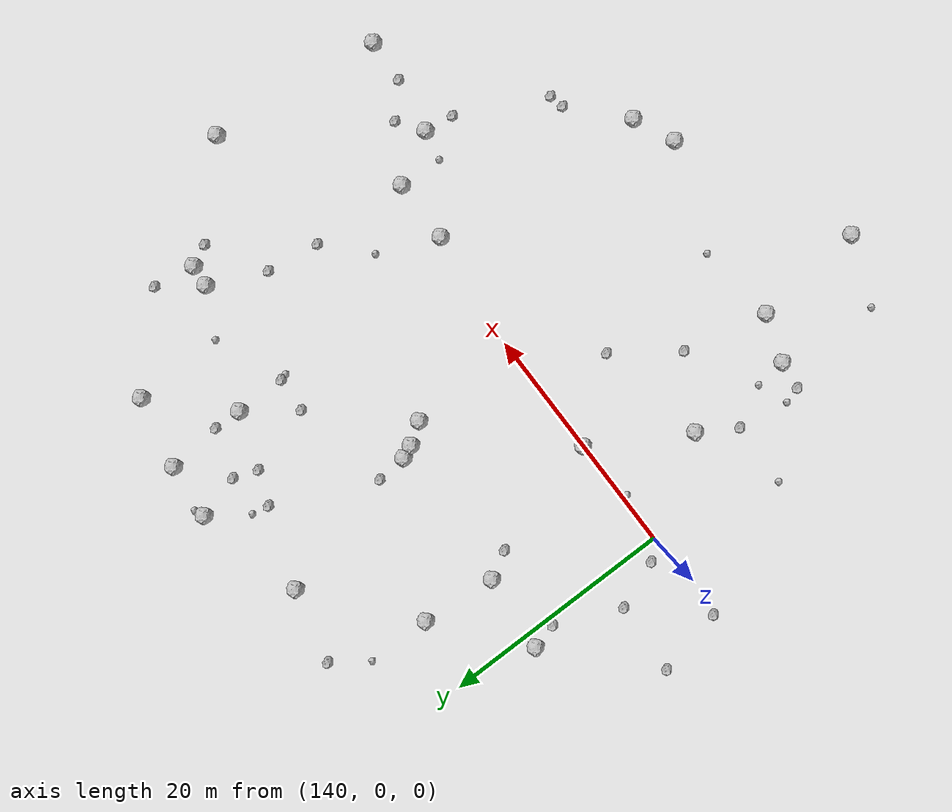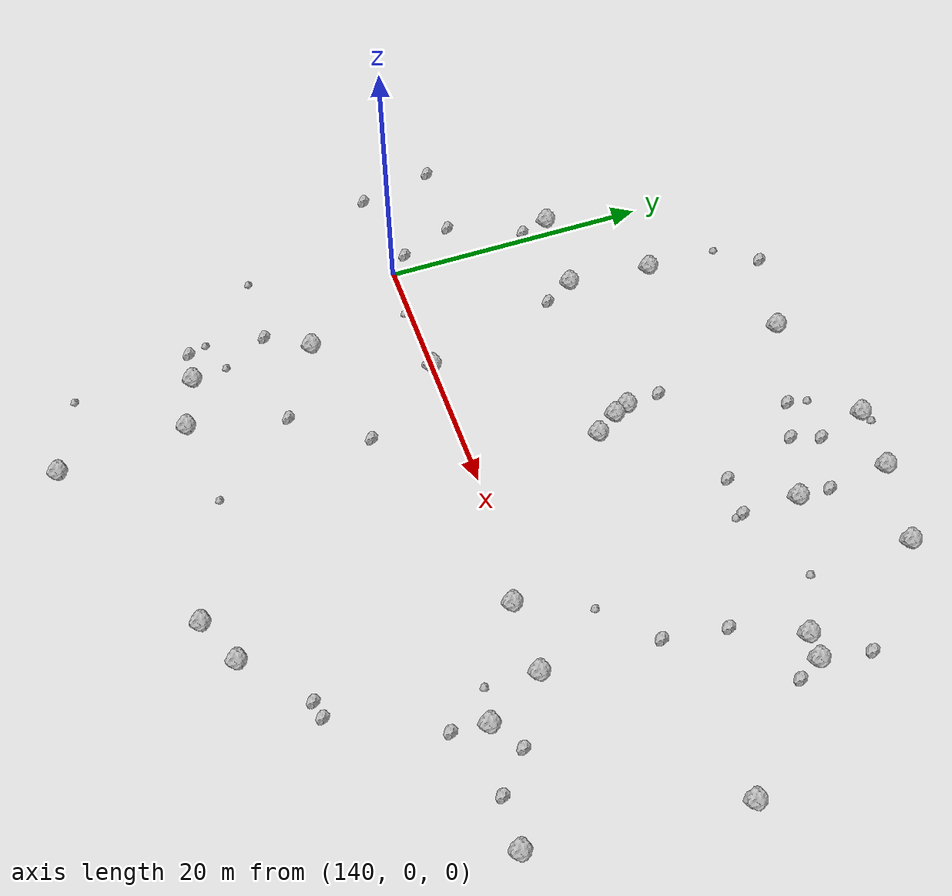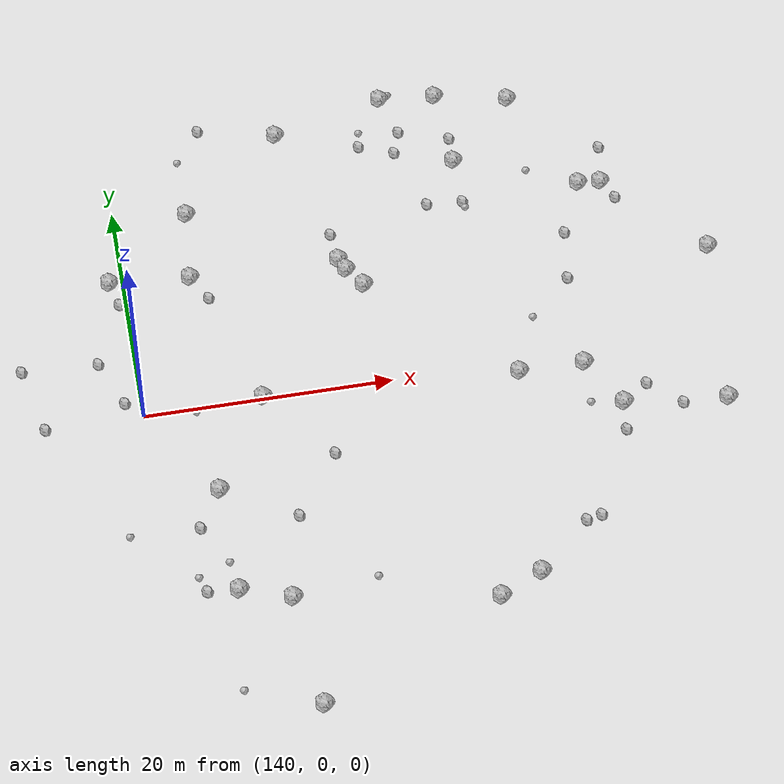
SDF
<sdf version="1.6">
 <world name="default">
  <include><uri>model://sun</uri></include>
  <model name="rock1_4_2">
   <include><uri>model://rock1</uri><pose>149.9186559853873 -27.66160300285285 0.5 0 0 0</pose></include>
  </model>
  <model name="rock1_4_3">
   <include><uri>model://rock1</uri><pose>168.4350849217418 27.367357086945724 0.5 0 0 0</pose></include>
  </model>
  <model name="rock1_4_4">
   <include><uri>model://rock1</uri><pose>149.56493690277816 0.007191260034534963 0.5 0 0 0</pose></include>
  </model>
  <model name="rock1_4_5">
   <include><uri>model://rock1</uri><pose>168.7574964973902 20.404114057977182 0.5 0 0 0</pose></include>
  </model>
  <model name="rock1_4_6">
   <include><uri>model://rock1</uri><pose>180.35491285105704 16.191413770999205 0.5 0 0 0</pose></include>
  </model>
  <model name="rock1_4_7">
   <include><uri>model://rock1</uri><pose>145.11801865262046 -16.94140424832664 0.5 0 0 0</pose></include>
  </model>
  <model name="rock1_4_8">
   <include><uri>model://rock1</uri><pose>178.52016647944674 16.3617373116046 0.5 0 0 0</pose></include>
  </model>
  <model name="rock1_4_9">
   <include><uri>model://rock1</uri><pose>168.12542454321076 -19.341336859271944 0.5 0 0 0</pose></include>
  </model>
  <model name="rock1_4_10">
   <include><uri>model://rock1</uri><pose>138.96634971329308 12.969439595009987 0.5 0 0 0</pose></include>
  </model>
  <model name="rock1_4_11">
   <include><uri>model://rock1</uri><pose>154.5375583294854 25.563971941342153 0.5 0 0 0</pose></include>
  </model>
  <model name="rock1_4_12">
   <include><uri>model://rock1</uri><pose>157.64686067988853 12.149517932795646 0.5 0 0 0</pose></include>
  </model>
  <model name="rock1_4_13">
   <include><uri>model://rock1</uri><pose>158.1031729944149 11.051653061830166 0.5 0 0 0</pose></include>
  </model>
  <model name="rock1_4_14">
   <include><uri>model://rock1</uri><pose>159.27138119436367 9.319884027974162 0.5 0 0 0</pose></include>
  </model>
  <model name="rock1_4_15">
   <include><uri>model://rock1</uri><pose>145.48867669721616 12.433376494312995 0.5 0 0 0</pose></include>
  </model>
  <model name="rock1_4_16">
   <include><uri>model://rock1</uri><pose>144.93212156928132 -7.903364126592141 0.5 0 0 0</pose></include>
  </model>
  <model name="rock1_4_17">
   <include><uri>model://rock1</uri><pose>174.43973219898757 26.056270631050488 0.5 0 0 0</pose></include>
  </model>
  <model name="rock1_4_18">
   <include><uri>model://rock1</uri><pose>164.68728762142996 -20.922854063391227 0.5 0 0 0</pose></include>
  </model>
  <model name="rock1_4_19">
   <include><uri>model://rock1</uri><pose>163.77906595497052 27.823408574788346 0.5 0 0 0</pose></include>
  </model>
  <model name="rock1_4_20">
   <include><uri>model://rock1</uri><pose>149.0526940672933 -18.30175439434182 0.5 0 0 0</pose></include>
  </model>
  <model name="rock1_4_21">
   <include><uri>model://rock1</uri><pose>146.06462946450682 18.746825983866373 0.5 0 0 0</pose></include>
  </model>
  <model name="rock1_4_22">
   <include><uri>model://rock1</uri><pose>170.04190695431328 -1.1284984316151032 0.5 0 0 0</pose></include>
  </model>
  <model name="rock1_4_23">
   <include><uri>model://rock1</uri><pose>185.8720132272515 -6.359253001441537 0.5 0 0 0</pose></include>
  </model>
  <model name="rock1_4_24">
   <include><uri>model://rock1</uri><pose>177.62239777166008 -5.392123403222826 0.5 0 0 0</pose></include>
  </model>
  <model name="rock1_4_25">
   <include><uri>model://rock1</uri><pose>175.29353646771926 -1.1773297317418923 0.5 0 0 0</pose></include>
  </model>
  <model name="rock1_4_26">
   <include><uri>model://rock1</uri><pose>187.64179371580772 8.258935329824439 0.5 0 0 0</pose></include>
  </model>
  <model name="rock2_4_0">
   <include><uri>model://rock2</uri><pose>150.65087411739557 -11.19989457102929 0.3 0 0 0</pose></include>
  </model>
  <model name="rock2_4_1">
   <include><uri>model://rock2</uri><pose>177.26911300292636 -7.8650437688332495 0.3 0 0 0</pose></include>
  </model>
  <model name="rock2_4_2">
   <include><uri>model://rock2</uri><pose>181.20619625265002 14.46912695469539 0.3 0 0 0</pose></include>
  </model>
  <model name="rock2_4_3">
   <include><uri>model://rock2</uri><pose>132.19180398563316 -0.05147709585762783 0.3 0 0 0</pose></include>
  </model>
  <model name="rock2_4_4">
   <include><uri>model://rock2</uri><pose>130.95686828464105 5.660168786864077 0.3 0 0 0</pose></include>
  </model>
  <model name="rock2_4_5">
   <include><uri>model://rock2</uri><pose>146.67351261023836 10.236020315386483 0.3 0 0 0</pose></include>
  </model>
  <model name="rock2_4_6">
   <include><uri>model://rock2</uri><pose>173.6868559203829 -15.165393308227415 0.3 0 0 0</pose></include>
  </model>
  <model name="rock2_4_7">
   <include><uri>model://rock2</uri><pose>164.74340754957427 24.201397535998588 0.3 0 0 0</pose></include>
  </model>
  <model name="rock2_4_8">
   <include><uri>model://rock2</uri><pose>157.39162414962544 14.76479585855163 0.3 0 0 0</pose></include>
  </model>
  <model name="rock2_4_9">
   <include><uri>model://rock2</uri><pose>180.95846627804036 19.771506824820285 0.3 0 0 0</pose></include>
  </model>
  <model name="rock2_4_10">
   <include><uri>model://rock2</uri><pose>164.0253593484599 22.137328002195765 0.3 0 0 0</pose></include>
  </model>
  <model name="rock2_4_11">
   <include><uri>model://rock2</uri><pose>182.24498536093083 -6.17995568900248 0.3 0 0 0</pose></include>
  </model>
  <model name="rock2_4_12">
   <include><uri>model://rock2</uri><pose>139.45746522334244 10.822590140569432 0.3 0 0 0</pose></include>
  </model>
  <model name="rock2_4_13">
   <include><uri>model://rock2</uri><pose>168.6983418867735 16.218500183254868 0.3 0 0 0</pose></include>
  </model>
  <model name="rock2_4_14">
   <include><uri>model://rock2</uri><pose>154.32336738073843 -6.080041655215375 0.3 0 0 0</pose></include>
  </model>
  <model name="rock2_4_15">
   <include><uri>model://rock2</uri><pose>142.9468264951189 -11.00647921426124 0.3 0 0 0</pose></include>
  </model>
  <model name="rock2_4_16">
   <include><uri>model://rock2</uri><pose>161.20249760325197 23.253490332229568 0.3 0 0 0</pose></include>
  </model>
  <model name="rock2_4_17">
   <include><uri>model://rock2</uri><pose>176.34971995913355 11.658133324104185 0.3 0 0 0</pose></include>
  </model>
  <model name="rock2_4_18">
   <include><uri>model://rock2</uri><pose>137.07261040970278 5.369014768282803 0.3 0 0 0</pose></include>
  </model>
  <model name="rock2_4_19">
   <include><uri>model://rock2</uri><pose>175.6696314794745 7.177084068686739 0.3 0 0 0</pose></include>
  </model>
  <model name="rock2_4_20">
   <include><uri>model://rock2</uri><pose>168.82160011585205 22.825147441193465 0.3 0 0 0</pose></include>
  </model>
  <model name="rock2_4_21">
   <include><uri>model://rock2</uri><pose>138.6739897559476 1.338790206148527 0.3 0 0 0</pose></include>
  </model>
  <model name="rock2_4_22">
   <include><uri>model://rock2</uri><pose>148.1692596224745 27.177110057079375 0.3 0 0 0</pose></include>
  </model>
  <model name="rock2_4_23">
   <include><uri>model://rock2</uri><pose>172.44211485286962 -15.430230926577973 0.3 0 0 0</pose></include>
  </model>
  <model name="rock2_4_24">
   <include><uri>model://rock2</uri><pose>142.66924082027776 -16.662840946247712 0.3 0 0 0</pose></include>
  </model>
  <model name="rock2_4_25">
   <include><uri>model://rock2</uri><pose>179.75675985367053 -3.903083275570161 0.3 0 0 0</pose></include>
  </model>
  <model name="rock2_4_26">
   <include><uri>model://rock2</uri><pose>165.7521971244911 16.4259939653019 0.3 0 0 0</pose></include>
  </model>
  <model name="rock3_4_0">
   <include><uri>model://rock3</uri><pose>146.03242587557426 24.22709339901163 0.2 0 0 0</pose></include>
  </model>
  <model name="rock3_4_1">
   <include><uri>model://rock3</uri><pose>155.7560229975538 -17.529591744531203 0.2 0 0 0</pose></include>
  </model>
  <model name="rock3_4_2">
   <include><uri>model://rock3</uri><pose>175.05708819820518 -4.875856029978646 0.2 0 0 0</pose></include>
  </model>
  <model name="rock3_4_3">
   <include><uri>model://rock3</uri><pose>142.213175908945 -15.33275346410144 0.2 0 0 0</pose></include>
  </model>
  <model name="rock3_4_4">
   <include><uri>model://rock3</uri><pose>164.5372413384165 28.25597670313192 0.2 0 0 0</pose></include>
  </model>
  <model name="rock3_4_5">
   <include><uri>model://rock3</uri><pose>172.14123690276335 3.9039851298691772 0.2 0 0 0</pose></include>
  </model>
  <model name="rock3_4_6">
   <include><uri>model://rock3</uri><pose>161.44619864768848 24.698146642377445 0.2 0 0 0</pose></include>
  </model>
  <model name="rock3_4_7">
   <include><uri>model://rock3</uri><pose>174.5098005913749 18.481745226743143 0.2 0 0 0</pose></include>
  </model>
  <model name="rock3_4_8">
   <include><uri>model://rock3</uri><pose>144.15452688231056 -0.4223554790959909 0.2 0 0 0</pose></include>
  </model>
  <model name="rock3_4_9">
   <include><uri>model://rock3</uri><pose>168.83114542490495 15.638399531829371 0.2 0 0 0</pose></include>
  </model>
  <model name="rock3_4_10">
   <include><uri>model://rock3</uri><pose>144.1615418837435 -25.472128116411703 0.2 0 0 0</pose></include>
  </model>
  <model name="rock3_4_11">
   <include><uri>model://rock3</uri><pose>137.4986090363179 -10.875160242761176 0.2 0 0 0</pose></include>
  </model>
  <model name="rock3_4_12">
   <include><uri>model://rock3</uri><pose>144.73003946476774 -14.37266930541484 0.2 0 0 0</pose></include>
  </model>
 </world>
</sdf>
